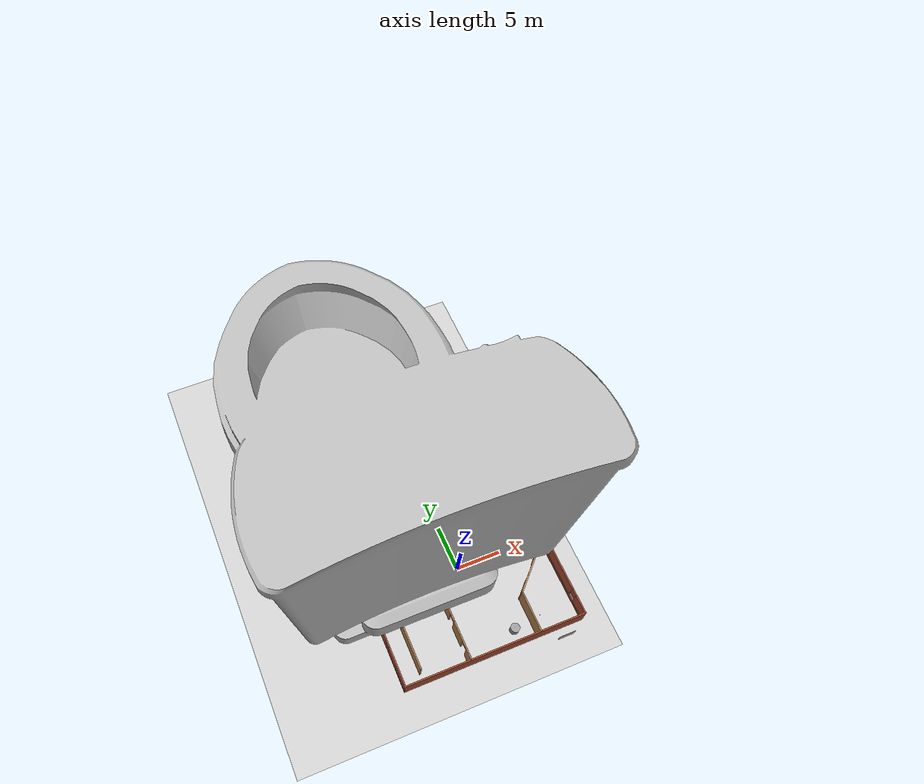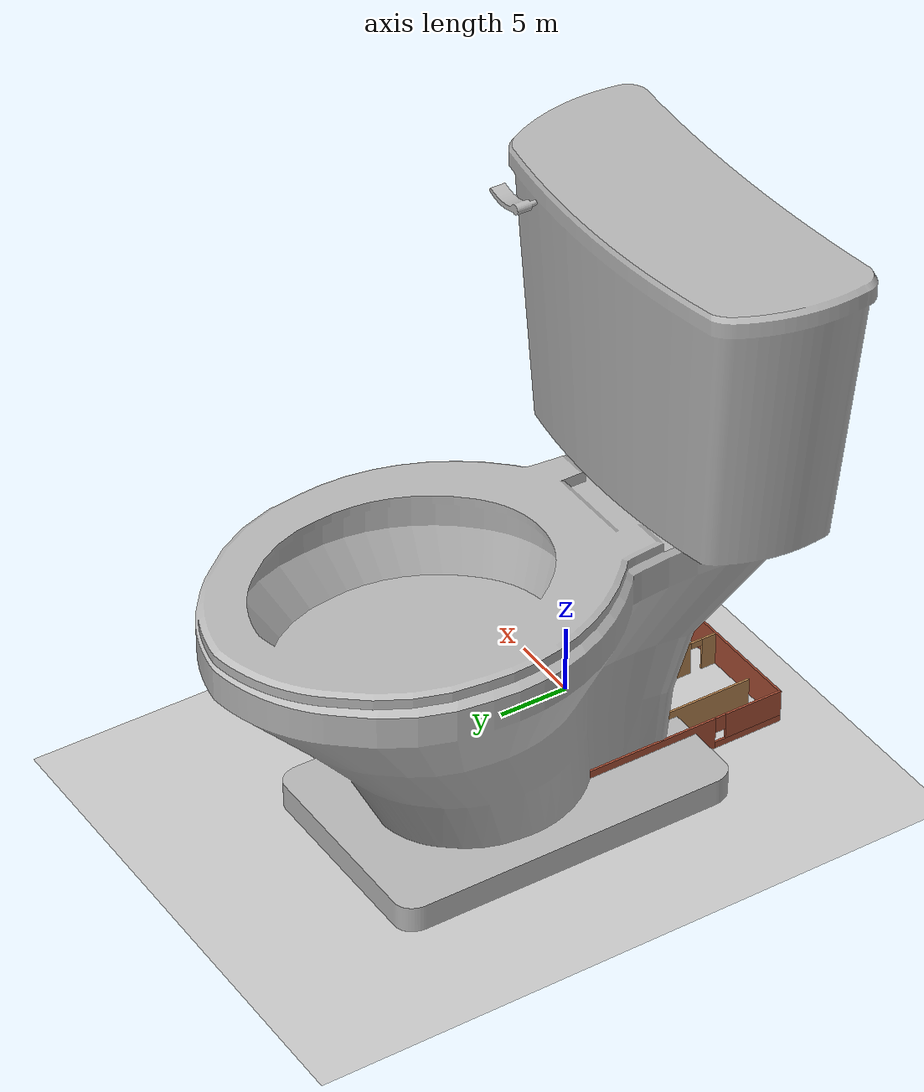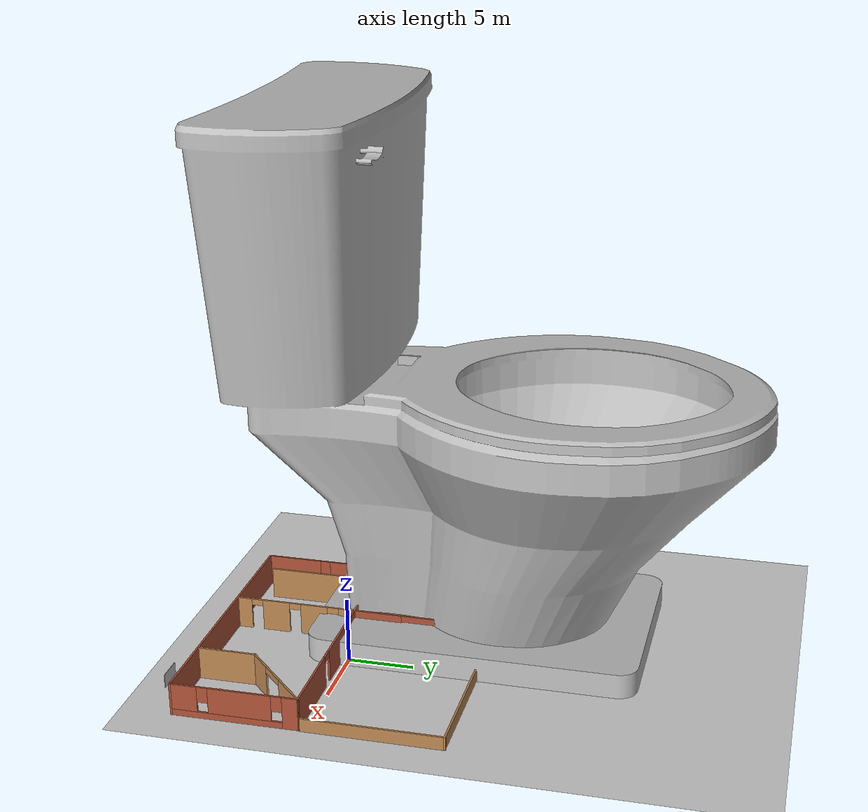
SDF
<sdf version="1.10">
 <world name="default">
  <gravity>0 0 -9.8000000000000007</gravity>
  <magnetic_field>6.0000000000000002e-06 2.3e-05 -4.1999999999999998e-05</magnetic_field>
  <atmosphere type="adiabatic"/>
  <physics type="ode">
   <max_step_size>0.001</max_step_size>
   <real_time_factor>1</real_time_factor>
   <real_time_update_rate>1000</real_time_update_rate>
  </physics>
  <scene>
   <ambient>0.400000006 0.400000006 0.400000006 1</ambient>
   <background>0.699999988 0.699999988 0.699999988 1</background>
   <shadows>true</shadows>
  </scene>
  <audio><device>default</device></audio>
  <spherical_coordinates>
   <surface_model>EARTH_WGS84</surface_model>
   <latitude_deg>0</latitude_deg>
   <longitude_deg>0</longitude_deg>
   <elevation>0</elevation>
   <heading_deg>0</heading_deg>
  </spherical_coordinates>
  <model name="ground_plane">
   <static>true</static>
   <link name="link">
    <collision name="collision">
     <geometry><plane><normal>0 0 1</normal><size>100 100</size></plane></geometry>
     <surface><friction><ode><mu>100</mu><mu2>50</mu2></ode></friction></surface>
    </collision>
    <visual name="visual">
     <cast_shadows>false</cast_shadows>
     <geometry><plane><normal>0 0 1</normal><size>100 100</size></plane></geometry>
     <material>
      <script><uri>file://media/materials/scripts/gazebo.material</uri><name>Gazebo/Grey</name></script>
     </material>
    </visual>
    <inertial>
     <mass>1</mass>
     <inertia><ixx>1</ixx><ixy>0</ixy><ixz>0</ixz><iyy>1</iyy><iyz>0</iyz><izz>1</izz></inertia>
    </inertial>
   </link>
  </model>
  <model name="test_room">
   <pose>-0.185701 0.023460000000000002 0 0 0 0</pose>
   <link name="Wall_1">
    <pose>-10.0852 -6.9999999999999999e-06 0 0 0 -1.5708</pose>
    <visual name="Wall_1_Visual_0">
     <pose>-2.6008399999999998 0 1.25 0 0 0</pose>
     <geometry><box><size>14.826599999999999 0.14999999999999999 2.5</size></box></geometry>
     <material>
      <script><uri>file://media/materials/scripts/gazebo.material</uri><name>Gazebo/Bricks</name></script>
      <ambient>1 1 1 1</ambient>
     </material>
     <meta><layer>0</layer></meta>
    </visual>
    <collision name="Wall_1_Collision_0">
     <geometry><box><size>14.826599999999999 0.14999999999999999 2.5</size></box></geometry>
     <pose>-2.6008399999999998 0 1.25 0 0 0</pose>
    </collision>
    <visual name="Wall_1_Visual_1">
     <pose>7.4133100000000001 0 0.25 0 0 0</pose>
     <geometry><box><size>5.20167 0.14999999999999999 0.5</size></box></geometry>
     <material>
      <script><uri>file://media/materials/scripts/gazebo.material</uri><name>Gazebo/Bricks</name></script>
      <ambient>1 1 1 1</ambient>
     </material>
     <meta><layer>0</layer></meta>
    </visual>
    <collision name="Wall_1_Collision_1">
     <geometry><box><size>5.20167 0.14999999999999999 0.5</size></box></geometry>
     <pose>7.4133100000000001 0 0.25 0 0 0</pose>
    </collision>
    <visual name="Wall_1_Visual_2">
     <pose>7.8133100000000004 0 1.5 0 0 0</pose>
     <geometry><box><size>4.4016700000000002 0.14999999999999999 2</size></box></geometry>
     <material>
      <script><uri>file://media/materials/scripts/gazebo.material</uri><name>Gazebo/Bricks</name></script>
      <ambient>1 1 1 1</ambient>
     </material>
     <meta><layer>0</layer></meta>
    </visual>
    <collision name="Wall_1_Collision_2">
     <geometry><box><size>4.4016700000000002 0.14999999999999999 2</size></box></geometry>
     <pose>7.8133100000000004 0 1.5 0 0 0</pose>
    </collision>
    <visual name="Wall_1_Visual_3">
     <pose>5.2124800000000002 0 1.8999999999999999 0 0 0</pose>
     <geometry><box><size>0.80000000000000004 0.14999999999999999 1.2</size></box></geometry>
     <material>
      <script><uri>file://media/materials/scripts/gazebo.material</uri><name>Gazebo/Bricks</name></script>
      <ambient>1 1 1 1</ambient>
     </material>
     <meta><layer>0</layer></meta>
    </visual>
    <collision name="Wall_1_Collision_3">
     <geometry><box><size>0.80000000000000004 0.14999999999999999 1.2</size></box></geometry>
     <pose>5.2124800000000002 0 1.8999999999999999 0 0 0</pose>
    </collision>
    <inertial>
     <mass>1</mass>
     <inertia><ixx>1</ixx><ixy>0</ixy><ixz>0</ixz><iyy>1</iyy><iyz>0</iyz><izz>1</izz></inertia>
    </inertial>
   </link>
   <link name="Wall_10">
    <pose>10.052600000000004 -5.2189899999999838 0 0 0 -1.5643299999999996</pose>
    <visual name="Wall_10_Visual_0">
     <pose>-4.1680999999999999 0 1.25 0 0 0</pose>
     <geometry><box><size>1.2333700000000001 0.14999999999999999 2.5</size></box></geometry>
     <material>
      <script><uri>file://media/materials/scripts/gazebo.material</uri><name>Gazebo/Bricks</name></script>
      <ambient>1 1 1 1</ambient>
     </material>
     <meta><layer>0</layer></meta>
    </visual>
    <collision name="Wall_10_Collision_0">
     <geometry><box><size>1.2333700000000001 0.14999999999999999 2.5</size></box></geometry>
     <pose>-4.1680999999999999 0 1.25 0 0 0</pose>
    </collision>
    <visual name="Wall_10_Visual_1">
     <pose>0.61668599999999996 0 0.25 0 0 0</pose>
     <geometry><box><size>8.3361999999999998 0.14999999999999999 0.5</size></box></geometry>
     <material>
      <script><uri>file://media/materials/scripts/gazebo.material</uri><name>Gazebo/Bricks</name></script>
      <ambient>1 1 1 1</ambient>
     </material>
     <meta><layer>0</layer></meta>
    </visual>
    <collision name="Wall_10_Collision_1">
     <geometry><box><size>8.3361999999999998 0.14999999999999999 0.5</size></box></geometry>
     <pose>0.61668599999999996 0 0.25 0 0 0</pose>
    </collision>
    <visual name="Wall_10_Visual_2">
     <pose>-0.41019699999999998 0 1.5 0 0 0</pose>
     <geometry><box><size>4.6824399999999997 0.14999999999999999 2</size></box></geometry>
     <material>
      <script><uri>file://media/materials/scripts/gazebo.material</uri><name>Gazebo/Bricks</name></script>
      <ambient>1 1 1 1</ambient>
     </material>
     <meta><layer>0</layer></meta>
    </visual>
    <collision name="Wall_10_Collision_2">
     <geometry><box><size>4.6824399999999997 0.14999999999999999 2</size></box></geometry>
     <pose>-0.41019699999999998 0 1.5 0 0 0</pose>
    </collision>
    <visual name="Wall_10_Visual_3">
     <pose>3.7579099999999999 0 1.5 0 0 0</pose>
     <geometry><box><size>2.05376 0.14999999999999999 2</size></box></geometry>
     <material>
      <script><uri>file://media/materials/scripts/gazebo.material</uri><name>Gazebo/Bricks</name></script>
      <ambient>1 1 1 1</ambient>
     </material>
     <meta><layer>0</layer></meta>
    </visual>
    <collision name="Wall_10_Collision_3">
     <geometry><box><size>2.05376 0.14999999999999999 2</size></box></geometry>
     <pose>3.7579099999999999 0 1.5 0 0 0</pose>
    </collision>
    <visual name="Wall_10_Visual_4">
     <pose>-3.1514199999999999 0 1.8999999999999999 0 0 0</pose>
     <geometry><box><size>0.80000000000000004 0.14999999999999999 1.2</size></box></geometry>
     <material>
      <script><uri>file://media/materials/scripts/gazebo.material</uri><name>Gazebo/Bricks</name></script>
      <ambient>1 1 1 1</ambient>
     </material>
     <meta><layer>0</layer></meta>
    </visual>
    <collision name="Wall_10_Collision_4">
     <geometry><box><size>0.80000000000000004 0.14999999999999999 1.2</size></box></geometry>
     <pose>-3.1514199999999999 0 1.8999999999999999 0 0 0</pose>
    </collision>
    <visual name="Wall_10_Visual_5">
     <pose>2.3310200000000001 0 1.8999999999999999 0 0 0</pose>
     <geometry><box><size>0.80000000000000004 0.14999999999999999 1.2</size></box></geometry>
     <material>
      <script><uri>file://media/materials/scripts/gazebo.material</uri><name>Gazebo/Bricks</name></script>
      <ambient>1 1 1 1</ambient>
     </material>
     <meta><layer>0</layer></meta>
    </visual>
    <collision name="Wall_10_Collision_5">
     <geometry><box><size>0.80000000000000004 0.14999999999999999 1.2</size></box></geometry>
     <pose>2.3310200000000001 0 1.8999999999999999 0 0 0</pose>
    </collision>
    <inertial>
     <mass>1</mass>
     <inertia><ixx>1</ixx><ixy>0</ixy><ixz>0</ixz><iyy>1</iyy><iyz>0</iyz><izz>1</izz></inertia>
    </inertial>
   </link>
   <link name="Wall_12">
    <collision name="Wall_12_Collision">
     <geometry><box><size>7.4126399999999997 0.14999999999999999 2.5</size></box></geometry>
     <pose>0 0 1.25 0 0 0</pose>
    </collision>
    <visual name="Wall_12_Visual">
     <pose>0 0 1.25 0 0 0</pose>
     <geometry><box><size>7.4126399999999997 0.14999999999999999 2.5</size></box></geometry>
     <material>
      <script><uri>file://media/materials/scripts/gazebo.material</uri><name>Gazebo/Bricks</name></script>
      <ambient>1 1 1 1</ambient>
     </material>
     <meta><layer>0</layer></meta>
    </visual>
    <pose>-6.4538500000000036 9.9384100000000011 0 0 0 -0.00020300000139346062</pose>
    <inertial>
     <mass>1</mass>
     <inertia><ixx>1</ixx><ixy>0</ixy><ixz>0</ixz><iyy>1</iyy><iyz>0</iyz><izz>1</izz></inertia>
    </inertial>
   </link>
   <link name="Wall_16">
    <pose>-6.4131499999999946 -0.50716799999999673 0 0 0 3.1415900000000008</pose>
    <visual name="Wall_16_Visual_0">
     <pose>-1.94676 0 1.25 0 0 0</pose>
     <geometry><box><size>3.3564799999999999 0.14999999999999999 2.5</size></box></geometry>
     <material>
      <script><uri>file://media/materials/scripts/gazebo.material</uri><name>Gazebo/Wood</name></script>
      <ambient>1 1 1 1</ambient>
     </material>
     <meta><layer>0</layer></meta>
    </visual>
    <collision name="Wall_16_Collision_0">
     <geometry><box><size>3.3564799999999999 0.14999999999999999 2.5</size></box></geometry>
     <pose>-1.94676 0 1.25 0 0 0</pose>
    </collision>
    <visual name="Wall_16_Visual_1">
     <pose>2.1282399999999999 0 1.25 0 0 0</pose>
     <geometry><box><size>2.9935200000000002 0.14999999999999999 2.5</size></box></geometry>
     <material>
      <script><uri>file://media/materials/scripts/gazebo.material</uri><name>Gazebo/Wood</name></script>
      <ambient>1 1 1 1</ambient>
     </material>
     <meta><layer>0</layer></meta>
    </visual>
    <collision name="Wall_16_Collision_1">
     <geometry><box><size>2.9935200000000002 0.14999999999999999 2.5</size></box></geometry>
     <pose>2.1282399999999999 0 1.25 0 0 0</pose>
    </collision>
    <visual name="Wall_16_Visual_2">
     <pose>0.181481 0 2.25 0 0 0</pose>
     <geometry><box><size>0.90000000000000002 0.14999999999999999 0.5</size></box></geometry>
     <material>
      <script><uri>file://media/materials/scripts/gazebo.material</uri><name>Gazebo/Wood</name></script>
      <ambient>1 1 1 1</ambient>
     </material>
     <meta><layer>0</layer></meta>
    </visual>
    <collision name="Wall_16_Collision_2">
     <geometry><box><size>0.90000000000000002 0.14999999999999999 0.5</size></box></geometry>
     <pose>0.181481 0 2.25 0 0 0</pose>
    </collision>
    <inertial>
     <mass>1</mass>
     <inertia><ixx>1</ixx><ixy>0</ixy><ixz>0</ixz><iyy>1</iyy><iyz>0</iyz><izz>1</izz></inertia>
    </inertial>
   </link>
   <link name="Wall_18">
    <pose>-2.8631499999999916 -5.1821699999999931 0 0 0 -1.5707999999999998</pose>
    <visual name="Wall_18_Visual_0">
     <pose>-4.08833 0 1.25 0 0 0</pose>
     <geometry><box><size>1.32334 0.14999999999999999 2.5</size></box></geometry>
     <material>
      <script><uri>file://media/materials/scripts/gazebo.material</uri><name>Gazebo/Wood</name></script>
      <ambient>1 1 1 1</ambient>
     </material>
     <meta><layer>0</layer></meta>
    </visual>
    <collision name="Wall_18_Collision_0">
     <geometry><box><size>1.32334 0.14999999999999999 2.5</size></box></geometry>
     <pose>-4.08833 0 1.25 0 0 0</pose>
    </collision>
    <visual name="Wall_18_Visual_1">
     <pose>-1.45004 0 1.25 0 0 0</pose>
     <geometry><box><size>2.1532399999999998 0.14999999999999999 2.5</size></box></geometry>
     <material>
      <script><uri>file://media/materials/scripts/gazebo.material</uri><name>Gazebo/Wood</name></script>
      <ambient>1 1 1 1</ambient>
     </material>
     <meta><layer>0</layer></meta>
    </visual>
    <collision name="Wall_18_Collision_1">
     <geometry><box><size>2.1532399999999998 0.14999999999999999 2.5</size></box></geometry>
     <pose>-1.45004 0 1.25 0 0 0</pose>
    </collision>
    <visual name="Wall_18_Visual_2">
     <pose>1.60632 0 1.25 0 0 0</pose>
     <geometry><box><size>2.1594799999999998 0.14999999999999999 2.5</size></box></geometry>
     <material>
      <script><uri>file://media/materials/scripts/gazebo.material</uri><name>Gazebo/Wood</name></script>
      <ambient>1 1 1 1</ambient>
     </material>
     <meta><layer>0</layer></meta>
    </visual>
    <collision name="Wall_18_Collision_2">
     <geometry><box><size>2.1594799999999998 0.14999999999999999 2.5</size></box></geometry>
     <pose>1.60632 0 1.25 0 0 0</pose>
    </collision>
    <visual name="Wall_18_Visual_3">
     <pose>4.1680299999999999 0 1.25 0 0 0</pose>
     <geometry><box><size>1.16395 0.14999999999999999 2.5</size></box></geometry>
     <material>
      <script><uri>file://media/materials/scripts/gazebo.material</uri><name>Gazebo/Wood</name></script>
      <ambient>1 1 1 1</ambient>
     </material>
     <meta><layer>0</layer></meta>
    </visual>
    <collision name="Wall_18_Collision_3">
     <geometry><box><size>1.16395 0.14999999999999999 2.5</size></box></geometry>
     <pose>4.1680299999999999 0 1.25 0 0 0</pose>
    </collision>
    <visual name="Wall_18_Visual_4">
     <pose>-2.9766599999999999 0 2.25 0 0 0</pose>
     <geometry><box><size>0.90000000000000002 0.14999999999999999 0.5</size></box></geometry>
     <material>
      <script><uri>file://media/materials/scripts/gazebo.material</uri><name>Gazebo/Wood</name></script>
      <ambient>1 1 1 1</ambient>
     </material>
     <meta><layer>0</layer></meta>
    </visual>
    <collision name="Wall_18_Collision_4">
     <geometry><box><size>0.90000000000000002 0.14999999999999999 0.5</size></box></geometry>
     <pose>-2.9766599999999999 0 2.25 0 0 0</pose>
    </collision>
    <visual name="Wall_18_Visual_5">
     <pose>0.076577000000000006 0 2.25 0 0 0</pose>
     <geometry><box><size>0.90000000000000002 0.14999999999999999 0.5</size></box></geometry>
     <material>
      <script><uri>file://media/materials/scripts/gazebo.material</uri><name>Gazebo/Wood</name></script>
      <ambient>1 1 1 1</ambient>
     </material>
     <meta><layer>0</layer></meta>
    </visual>
    <collision name="Wall_18_Collision_5">
     <geometry><box><size>0.90000000000000002 0.14999999999999999 0.5</size></box></geometry>
     <pose>0.076577000000000006 0 2.25 0 0 0</pose>
    </collision>
    <visual name="Wall_18_Visual_6">
     <pose>3.13605 0 2.25 0 0 0</pose>
     <geometry><box><size>0.90000000000000002 0.14999999999999999 0.5</size></box></geometry>
     <material>
      <script><uri>file://media/materials/scripts/gazebo.material</uri><name>Gazebo/Wood</name></script>
      <ambient>1 1 1 1</ambient>
     </material>
     <meta><layer>0</layer></meta>
    </visual>
    <collision name="Wall_18_Collision_6">
     <geometry><box><size>0.90000000000000002 0.14999999999999999 0.5</size></box></geometry>
     <pose>3.13605 0 2.25 0 0 0</pose>
    </collision>
    <inertial>
     <mass>1</mass>
     <inertia><ixx>1</ixx><ixy>0</ixy><ixz>0</ixz><iyy>1</iyy><iyz>0</iyz><izz>1</izz></inertia>
    </inertial>
   </link>
   <link name="Wall_20">
    <collision name="Wall_20_Collision">
     <geometry><box><size>7 0.14999999999999999 2.5</size></box></geometry>
     <pose>0 0 1.25 0 0 0</pose>
    </collision>
    <visual name="Wall_20_Visual">
     <pose>0 0 1.25 0 0 0</pose>
     <geometry><box><size>7 0.14999999999999999 2.5</size></box></geometry>
     <material>
      <script><uri>file://media/materials/scripts/gazebo.material</uri><name>Gazebo/Wood</name></script>
      <ambient>1 1 1 1</ambient>
     </material>
     <meta><layer>0</layer></meta>
    </visual>
    <pose>-7.9691699999999939 -5.4442299999999983 0 0 0 -1.5707999999999998</pose>
    <inertial>
     <mass>1</mass>
     <inertia><ixx>1</ixx><ixy>0</ixy><ixz>0</ixz><iyy>1</iyy><iyz>0</iyz><izz>1</izz></inertia>
    </inertial>
   </link>
   <link name="Wall_22">
    <pose>7.511880000000005 -3.0195299999999863 0 0 0 -2.3561899999999989</pose>
    <visual name="Wall_22_Visual_0">
     <pose>-2.0926499999999999 0 1.25 0 0 0</pose>
     <geometry><box><size>3.0647099999999998 0.14999999999999999 2.5</size></box></geometry>
     <material>
      <script><uri>file://media/materials/scripts/gazebo.material</uri><name>Gazebo/Wood</name></script>
      <ambient>1 1 1 1</ambient>
     </material>
     <meta><layer>0</layer></meta>
    </visual>
    <collision name="Wall_22_Collision_0">
     <geometry><box><size>3.0647099999999998 0.14999999999999999 2.5</size></box></geometry>
     <pose>-2.0926499999999999 0 1.25 0 0 0</pose>
    </collision>
    <visual name="Wall_22_Visual_1">
     <pose>2.58752 0 1.25 0 0 0</pose>
     <geometry><box><size>2.0749599999999999 0.14999999999999999 2.5</size></box></geometry>
     <material>
      <script><uri>file://media/materials/scripts/gazebo.material</uri><name>Gazebo/Wood</name></script>
      <ambient>1 1 1 1</ambient>
     </material>
     <meta><layer>0</layer></meta>
    </visual>
    <collision name="Wall_22_Collision_1">
     <geometry><box><size>2.0749599999999999 0.14999999999999999 2.5</size></box></geometry>
     <pose>2.58752 0 1.25 0 0 0</pose>
    </collision>
    <visual name="Wall_22_Visual_2">
     <pose>0.49487399999999998 0 2.25 0 0 0</pose>
     <geometry><box><size>2.1103299999999998 0.14999999999999999 0.5</size></box></geometry>
     <material>
      <script><uri>file://media/materials/scripts/gazebo.material</uri><name>Gazebo/Wood</name></script>
      <ambient>1 1 1 1</ambient>
     </material>
     <meta><layer>0</layer></meta>
    </visual>
    <collision name="Wall_22_Collision_2">
     <geometry><box><size>2.1103299999999998 0.14999999999999999 0.5</size></box></geometry>
     <pose>0.49487399999999998 0 2.25 0 0 0</pose>
    </collision>
    <inertial>
     <mass>1</mass>
     <inertia><ixx>1</ixx><ixy>0</ixy><ixz>0</ixz><iyy>1</iyy><iyz>0</iyz><izz>1</izz></inertia>
    </inertial>
   </link>
   <link name="Wall_23">
    <collision name="Wall_23_Collision">
     <geometry><box><size>4.5 0.14999999999999999 2.5</size></box></geometry>
     <pose>0 0 1.25 0 0 0</pose>
    </collision>
    <visual name="Wall_23_Visual">
     <pose>0 0 1.25 0 0 0</pose>
     <geometry><box><size>4.5 0.14999999999999999 2.5</size></box></geometry>
     <material>
      <script><uri>file://media/materials/scripts/gazebo.material</uri><name>Gazebo/Wood</name></script>
      <ambient>1 1 1 1</ambient>
     </material>
     <meta><layer>0</layer></meta>
    </visual>
    <pose>5.0016500000000086 -7.7047599999999878 0 0 0 -1.5707999999999998</pose>
    <inertial>
     <mass>1</mass>
     <inertia><ixx>1</ixx><ixy>0</ixy><ixz>0</ixz><iyy>1</iyy><iyz>0</iyz><izz>1</izz></inertia>
    </inertial>
   </link>
   <link name="Wall_3">
    <collision name="Wall_3_Collision">
     <geometry><box><size>20.320399999999999 0.14999999999999999 2.5</size></box></geometry>
     <pose>0 0 1.25 0 0 0</pose>
    </collision>
    <visual name="Wall_3_Visual">
     <pose>0 0 1.25 0 0 0</pose>
     <geometry><box><size>20.320399999999999 0.14999999999999999 2.5</size></box></geometry>
     <material>
      <script><uri>file://media/materials/scripts/gazebo.material</uri><name>Gazebo/Bricks</name></script>
      <ambient>1 1 1 1</ambient>
     </material>
     <meta><layer>0</layer></meta>
    </visual>
    <pose>8.0000000112767644e-06 -9.9391599999999904 0 0 0 7.7715611723760958e-16</pose>
    <inertial>
     <mass>1</mass>
     <inertia><ixx>1</ixx><ixy>0</ixy><ixz>0</ixz><iyy>1</iyy><iyz>0</iyz><izz>1</izz></inertia>
    </inertial>
   </link>
   <link name="Wall_7">
    <pose>-2.8423099999999994 4.7152500000000046 0 0 0 -1.5745799999999992</pose>
    <visual name="Wall_7_Visual_0">
     <pose>-3.9284500000000002 0 1.25 0 0 0</pose>
     <geometry><box><size>2.7380599999999999 0.14999999999999999 2.5</size></box></geometry>
     <material>
      <script><uri>file://media/materials/scripts/gazebo.material</uri><name>Gazebo/Bricks</name></script>
      <ambient>1 1 1 1</ambient>
     </material>
     <meta><layer>0</layer></meta>
    </visual>
    <collision name="Wall_7_Collision_0">
     <geometry><box><size>2.7380599999999999 0.14999999999999999 2.5</size></box></geometry>
     <pose>-3.9284500000000002 0 1.25 0 0 0</pose>
    </collision>
    <visual name="Wall_7_Visual_1">
     <pose>3.3884400000000001 0 1.25 0 0 0</pose>
     <geometry><box><size>3.8180700000000001 0.14999999999999999 2.5</size></box></geometry>
     <material>
      <script><uri>file://media/materials/scripts/gazebo.material</uri><name>Gazebo/Bricks</name></script>
      <ambient>1 1 1 1</ambient>
     </material>
     <meta><layer>0</layer></meta>
    </visual>
    <collision name="Wall_7_Collision_1">
     <geometry><box><size>3.8180700000000001 0.14999999999999999 2.5</size></box></geometry>
     <pose>3.3884400000000001 0 1.25 0 0 0</pose>
    </collision>
    <visual name="Wall_7_Visual_2">
     <pose>-0.54000400000000004 0 2.25 0 0 0</pose>
     <geometry><box><size>4.0388200000000003 0.14999999999999999 0.5</size></box></geometry>
     <material>
      <script><uri>file://media/materials/scripts/gazebo.material</uri><name>Gazebo/Bricks</name></script>
      <ambient>1 1 1 1</ambient>
     </material>
     <meta><layer>0</layer></meta>
    </visual>
    <collision name="Wall_7_Collision_2">
     <geometry><box><size>4.0388200000000003 0.14999999999999999 0.5</size></box></geometry>
     <pose>-0.54000400000000004 0 2.25 0 0 0</pose>
    </collision>
    <inertial>
     <mass>1</mass>
     <inertia><ixx>1</ixx><ixy>0</ixy><ixz>0</ixz><iyy>1</iyy><iyz>0</iyz><izz>1</izz></inertia>
    </inertial>
   </link>
   <link name="Wall_8">
    <pose>3.5800100000000041 -0.50823699999998939 0 0 0 -0.00016600000076160548</pose>
    <visual name="Wall_8_Visual_0">
     <pose>-3.36964 0 1.25 0 0 0</pose>
     <geometry><box><size>6.2949200000000003 0.14999999999999999 2.5</size></box></geometry>
     <material>
      <script><uri>file://media/materials/scripts/gazebo.material</uri><name>Gazebo/Bricks</name></script>
      <ambient>1 1 1 1</ambient>
     </material>
     <meta><layer>0</layer></meta>
    </visual>
    <collision name="Wall_8_Collision_0">
     <geometry><box><size>6.2949200000000003 0.14999999999999999 2.5</size></box></geometry>
     <pose>-3.36964 0 1.25 0 0 0</pose>
    </collision>
    <visual name="Wall_8_Visual_1">
     <pose>3.5974599999999999 0 1.25 0 0 0</pose>
     <geometry><box><size>5.83927 0.14999999999999999 2.5</size></box></geometry>
     <material>
      <script><uri>file://media/materials/scripts/gazebo.material</uri><name>Gazebo/Bricks</name></script>
      <ambient>1 1 1 1</ambient>
     </material>
     <meta><layer>0</layer></meta>
    </visual>
    <collision name="Wall_8_Collision_1">
     <geometry><box><size>5.83927 0.14999999999999999 2.5</size></box></geometry>
     <pose>3.5974599999999999 0 1.25 0 0 0</pose>
    </collision>
    <visual name="Wall_8_Visual_2">
     <pose>0.227824 0 2.25 0 0 0</pose>
     <geometry><box><size>0.90000000000000002 0.14999999999999999 0.5</size></box></geometry>
     <material>
      <script><uri>file://media/materials/scripts/gazebo.material</uri><name>Gazebo/Bricks</name></script>
      <ambient>1 1 1 1</ambient>
     </material>
     <meta><layer>0</layer></meta>
    </visual>
    <collision name="Wall_8_Collision_2">
     <geometry><box><size>0.90000000000000002 0.14999999999999999 0.5</size></box></geometry>
     <pose>0.227824 0 2.25 0 0 0</pose>
    </collision>
    <inertial>
     <mass>1</mass>
     <inertia><ixx>1</ixx><ixy>0</ixy><ixz>0</ixz><iyy>1</iyy><iyz>0</iyz><izz>1</izz></inertia>
    </inertial>
   </link>
   <static>true</static>
  </model>
  <model name="wooden_fence">
   <link name="Wall_14">
    <pose>6.4249999999999998 0 -0.77559599999999995 0 0 1.5708</pose>
    <inertial>
     <inertia><ixx>0.01</ixx><ixy>0</ixy><ixz>0</ixz><iyy>0.01</iyy><iyz>0</iyz><izz>0.01</izz></inertia>
     <mass>1</mass>
    </inertial>
    <visual name="Wall_14_Visual">
     <pose>0 0 1.25 0 0 0</pose>
     <geometry><box><size>10.5 0.14999999999999999 1.0201</size></box></geometry>
     <material>
      <script><uri>file://media/materials/scripts/gazebo.material</uri><name>Gazebo/Wood</name></script>
      <ambient>1 1 1 1</ambient>
      <shader type="pixel"/>
     </material>
     <meta><layer>0</layer></meta>
    </visual>
    <collision name="Wall_14_Collision">
     <pose>0 0 1.25 0 0 0</pose>
     <geometry><box><size>10.5 0.14999999999999999 1.0201</size></box></geometry>
     <surface>
      <friction>
       <ode><mu>1</mu><mu2>1</mu2><fdir1>0 0 0</fdir1><slip1>0</slip1><slip2>0</slip2></ode>
       <torsional>
        <coefficient>1</coefficient>
        <patch_radius>0</patch_radius>
        <surface_radius>0</surface_radius>
        <use_patch_radius>true</use_patch_radius>
        <ode><slip>0</slip></ode>
       </torsional>
      </friction>
      <bounce><restitution_coefficient>0</restitution_coefficient><threshold>1000000</threshold></bounce>
      <contact>
       <collide_without_contact>false</collide_without_contact>
       <collide_without_contact_bitmask>1</collide_without_contact_bitmask>
       <collide_bitmask>1</collide_bitmask>
       <ode>
        <soft_cfm>0</soft_cfm>
        <soft_erp>0.20000000000000001</soft_erp>
        <kp>10000000000000</kp>
        <kd>1</kd>
        <max_vel>0.01</max_vel>
        <min_depth>0</min_depth>
       </ode>
       <bullet>
        <split_impulse>true</split_impulse>
        <split_impulse_penetration_threshold>-0.01</split_impulse_penetration_threshold>
        <soft_cfm>0</soft_cfm>
        <soft_erp>0.20000000000000001</soft_erp>
        <kp>10000000000000</kp>
        <kd>1</kd>
       </bullet>
      </contact>
     </surface>
    </collision>
   </link>
   <link name="Wall_16">
    <pose>5.3290705182007514e-15 5.1750000000000043 -0.7441580000000001 0 0 3.141589999999999</pose>
    <inertial>
     <inertia><ixx>0.01</ixx><ixy>0</ixy><ixz>0</ixz><iyy>0.01</iyy><iyz>0</iyz><izz>0.01</izz></inertia>
     <mass>1</mass>
    </inertial>
    <visual name="Wall_16_Visual">
     <pose>0 0 1.25 0 0 0</pose>
     <geometry><box><size>13 0.14999999999999999 0.97096400000000005</size></box></geometry>
     <material>
      <script><uri>file://media/materials/scripts/gazebo.material</uri><name>Gazebo/Wood</name></script>
      <ambient>1 1 1 1</ambient>
      <shader type="pixel"/>
     </material>
     <meta><layer>0</layer></meta>
    </visual>
    <collision name="Wall_16_Collision">
     <pose>0 0 1.25 0 0 0</pose>
     <geometry><box><size>13 0.14999999999999999 0.97096400000000005</size></box></geometry>
     <surface>
      <friction>
       <ode><mu>1</mu><mu2>1</mu2><fdir1>0 0 0</fdir1><slip1>0</slip1><slip2>0</slip2></ode>
       <torsional>
        <coefficient>1</coefficient>
        <patch_radius>0</patch_radius>
        <surface_radius>0</surface_radius>
        <use_patch_radius>true</use_patch_radius>
        <ode><slip>0</slip></ode>
       </torsional>
      </friction>
      <bounce><restitution_coefficient>0</restitution_coefficient><threshold>1000000</threshold></bounce>
      <contact>
       <collide_without_contact>false</collide_without_contact>
       <collide_without_contact_bitmask>1</collide_without_contact_bitmask>
       <collide_bitmask>1</collide_bitmask>
       <ode>
        <soft_cfm>0</soft_cfm>
        <soft_erp>0.20000000000000001</soft_erp>
        <kp>10000000000000</kp>
        <kd>1</kd>
        <max_vel>0.01</max_vel>
        <min_depth>0</min_depth>
       </ode>
       <bullet>
        <split_impulse>true</split_impulse>
        <split_impulse_penetration_threshold>-0.01</split_impulse_penetration_threshold>
        <soft_cfm>0</soft_cfm>
        <soft_erp>0.20000000000000001</soft_erp>
        <kp>10000000000000</kp>
        <kd>1</kd>
       </bullet>
      </contact>
     </surface>
    </collision>
   </link>
   <static>true</static>
   <pose>3.4043999999999999 4.8091600000000003 0 0 0 0</pose>
  </model>
  <model name="unit_cylinder">
   <pose>2.8368799999999998 -8.3325999999999993 0.5 0 0 0</pose>
   <link name="link">
    <inertial>
     <mass>1</mass>
     <inertia>
      <ixx>0.14583299999999999</ixx>
      <ixy>0</ixy>
      <ixz>0</ixz>
      <iyy>0.14583299999999999</iyy>
      <iyz>0</iyz>
      <izz>0.125</izz>
     </inertia>
    </inertial>
    <collision name="collision">
     <geometry><cylinder><radius>0.5</radius><length>1</length></cylinder></geometry>
    </collision>
    <visual name="visual">
     <geometry><cylinder><radius>0.5</radius><length>1</length></cylinder></geometry>
     <material>
      <script><name>Gazebo/Grey</name><uri>file://media/materials/scripts/gazebo.material</uri></script>
     </material>
    </visual>
   </link>
   <static>false</static>
  </model>
  <model name="unit_sphere">
   <pose>-8.6767199999999995 7.58399 0.5 0 0 0</pose>
   <link name="link">
    <inertial>
     <mass>1</mass>
     <inertia>
      <ixx>0.10000000000000001</ixx>
      <ixy>0</ixy>
      <ixz>0</ixz>
      <iyy>0.10000000000000001</iyy>
      <iyz>0</iyz>
      <izz>0.10000000000000001</izz>
     </inertia>
    </inertial>
    <collision name="collision"><geometry><sphere><radius>0.5</radius></sphere></geometry></collision>
    <visual name="visual">
     <geometry><sphere><radius>0.5</radius></sphere></geometry>
     <material>
      <script><name>Gazebo/Grey</name><uri>file://media/materials/scripts/gazebo.material</uri></script>
     </material>
    </visual>
   </link>
   <static>false</static>
  </model>
  <model name="unit_sphere_0">
   <pose>-4.8006799999999998 7.6063400000000003 0.5 0 0 0</pose>
   <link name="link">
    <inertial>
     <mass>1</mass>
     <inertia>
      <ixx>0.10000000000000001</ixx>
      <ixy>0</ixy>
      <ixz>0</ixz>
      <iyy>0.10000000000000001</iyy>
      <iyz>0</iyz>
      <izz>0.10000000000000001</izz>
     </inertia>
    </inertial>
    <collision name="collision"><geometry><sphere><radius>0.5</radius></sphere></geometry></collision>
    <visual name="visual">
     <geometry><sphere><radius>0.5</radius></sphere></geometry>
     <material>
      <script><name>Gazebo/Grey</name><uri>file://media/materials/scripts/gazebo.material</uri></script>
     </material>
    </visual>
   </link>
   <static>false</static>
  </model>
  <model name="whiteboard">
   <static>true</static>
   <link name="link">
    <collision name="collision">
     <pose>-0.010992 -0.000776 0.99821199999999999 0 0 0</pose>
     <geometry><box><size>1.9737199999999999 0.69681999999999999 2.0250699999999999</size></box></geometry>
    </collision>
    <visual name="visual">
     <geometry>
      <mesh><uri>model://whiteboard/meshes/whiteboard.obj</uri><scale>0.01 0.01 0.01</scale></mesh>
     </geometry>
    </visual>
    <inertial>
     <mass>1</mass>
     <inertia><ixx>1</ixx><ixy>0</ixy><ixz>0</ixz><iyy>1</iyy><iyz>0</iyz><izz>1</izz></inertia>
    </inertial>
   </link>
   <pose>7.3027701377868652 -11.088600158691406 -0.0034432599786669016 1.5816663049527049 0 0</pose>
  </model>
  <model name="window_squeegee">
   <static>false</static>
   <link name="squeegee_body">
    <inertial>
     <mass>0.17999999999999999</mass>
     <pose>0 0 0.080000000000000002 0 0 0</pose>
     <inertia>
      <ixx>0.00089999999999999998</ixx>
      <ixy>0</ixy>
      <ixz>0</ixz>
      <iyy>0.0011999999999999999</iyy>
      <iyz>0</iyz>
      <izz>0.0015</izz>
     </inertia>
    </inertial>
    <visual name="handle_visual">
     <pose>0 0 0.10000000000000001 0 0 0</pose>
     <geometry>
      <cylinder><radius>0.014999999999999999</radius><length>0.17999999999999999</length></cylinder>
     </geometry>
     <material>
      <ambient>0.200000003 0.200000003 0.800000012 1</ambient>
      <diffuse>0.200000003 0.200000003 0.800000012 1</diffuse>
      <specular>0.300000012 0.300000012 0.300000012 1</specular>
     </material>
    </visual>
    <collision name="handle_collision">
     <pose>0 0 0.10000000000000001 0 0 0</pose>
     <geometry>
      <cylinder><radius>0.014999999999999999</radius><length>0.17999999999999999</length></cylinder>
     </geometry>
    </collision>
    <visual name="grip_visual">
     <pose>0 0 0.080000000000000002 0 0 0</pose>
     <geometry>
      <cylinder><radius>0.017000000000000001</radius><length>0.050000000000000003</length></cylinder>
     </geometry>
     <material>
      <ambient>0.100000001 0.100000001 0.100000001 1</ambient>
      <diffuse>0.100000001 0.100000001 0.100000001 1</diffuse>
      <specular>0.0500000007 0.0500000007 0.0500000007 1</specular>
     </material>
    </visual>
    <visual name="frame_visual">
     <pose>0 0 0.0050000000000000001 0 0 0</pose>
     <geometry><box><size>0.25 0.02 0.01</size></box></geometry>
     <material>
      <ambient>0.699999988 0.699999988 0.699999988 1</ambient>
      <diffuse>0.699999988 0.699999988 0.699999988 1</diffuse>
      <specular>0.5 0.5 0.5 1</specular>
     </material>
    </visual>
    <collision name="frame_collision">
     <pose>0 0 0.0050000000000000001 0 0 0</pose>
     <geometry><box><size>0.25 0.02 0.01</size></box></geometry>
    </collision>
    <visual name="rubber_blade_visual">
     <pose>0 0 -0.0030000000000000001 0 0 0</pose>
     <geometry><box><size>0.23999999999999999 0.0030000000000000001 0.0080000000000000002</size></box></geometry>
     <material>
      <ambient>0.100000001 0.100000001 0.100000001 1</ambient>
      <diffuse>0.200000003 0.200000003 0.200000003 1</diffuse>
      <specular>0.0500000007 0.0500000007 0.0500000007 1</specular>
     </material>
    </visual>
    <collision name="rubber_blade_collision">
     <pose>0 0 -0.0030000000000000001 0 0 0</pose>
     <geometry><box><size>0.23999999999999999 0.0030000000000000001 0.0080000000000000002</size></box></geometry>
     <surface>
      <friction><ode><mu>0.80000000000000004</mu><mu2>0.80000000000000004</mu2></ode></friction>
      <bounce><restitution_coefficient>0.10000000000000001</restitution_coefficient></bounce>
      <contact>
       <ode>
        <soft_cfm>0.050000000000000003</soft_cfm>
        <soft_erp>0.20000000000000001</soft_erp>
        <kp>5000</kp>
        <kd>50</kd>
       </ode>
      </contact>
     </surface>
    </collision>
    <visual name="corner_support_left">
     <pose>-0.11 0 0 0 0 0</pose>
     <geometry><box><size>0.014999999999999999 0.025000000000000001 0.014999999999999999</size></box></geometry>
     <material>
      <ambient>0.699999988 0.699999988 0.699999988 1</ambient>
      <diffuse>0.699999988 0.699999988 0.699999988 1</diffuse>
      <specular>0.5 0.5 0.5 1</specular>
     </material>
    </visual>
    <visual name="corner_support_right">
     <pose>0.11 0 0 0 0 0</pose>
     <geometry><box><size>0.014999999999999999 0.025000000000000001 0.014999999999999999</size></box></geometry>
     <material>
      <ambient>0.699999988 0.699999988 0.699999988 1</ambient>
      <diffuse>0.699999988 0.699999988 0.699999988 1</diffuse>
      <specular>0.5 0.5 0.5 1</specular>
     </material>
    </visual>
    <visual name="connection_joint">
     <pose>0 0 0.014999999999999999 0 0 0</pose>
     <geometry><box><size>0.040000000000000001 0.029999999999999999 0.02</size></box></geometry>
     <material>
      <ambient>0.600000024 0.600000024 0.600000024 1</ambient>
      <diffuse>0.600000024 0.600000024 0.600000024 1</diffuse>
      <specular>0.400000006 0.400000006 0.400000006 1</specular>
     </material>
    </visual>
    <collision name="connection_joint_collision">
     <pose>0 0 0.014999999999999999 0 0 0</pose>
     <geometry><box><size>0.040000000000000001 0.029999999999999999 0.02</size></box></geometry>
    </collision>
   </link>
   <pose>6.102881908416748 -7.8917098045349121 0.010497599840164185 0 0 0</pose>
  </model>
  <model name="toilet">
   <static>true</static>
   <link name="link">
    <collision name="collision">
     <pose>-0.0038730000000000001 0.13400100000000001 0.58209699999999998 0 0 0</pose>
     <geometry><box><size>0.55163099999999998 1.09406 1.18218</size></box></geometry>
    </collision>
    <visual name="visual">
     <geometry>
      <mesh>
       <uri>model://toilet/meshes/toilet.dae</uri>
       <scale>1.3999999999999999 1.3999999999999999 1.3999999999999999</scale>
      </mesh>
     </geometry>
    </visual>
    <inertial>
     <mass>1</mass>
     <inertia><ixx>1</ixx><ixy>0</ixy><ixz>0</ixz><iyy>1</iyy><iyz>0</iyz><izz>1</izz></inertia>
    </inertial>
   </link>
   <pose>5.6663236618041992 -8.4108991622924805 0 0 0 1.5694300101611129</pose>
  </model>
  <model name="whiteboard_0">
   <static>true</static>
   <link name="link">
    <collision name="collision">
     <pose>-0.010992 -0.000776 0.99821199999999999 0 0 0</pose>
     <geometry><box><size>1.9737199999999999 0.69681999999999999 2.0250699999999999</size></box></geometry>
    </collision>
    <visual name="visual">
     <geometry>
      <mesh><uri>model://whiteboard/meshes/whiteboard.obj</uri><scale>0.01 0.01 0.01</scale></mesh>
     </geometry>
    </visual>
    <inertial>
     <mass>1</mass>
     <inertia><ixx>1</ixx><ixy>0</ixy><ixz>0</ixz><iyy>1</iyy><iyz>0</iyz><izz>1</izz></inertia>
    </inertial>
   </link>
   <pose>9.895843505859375 -8.9399538040161133 -0.60817331075668335 1.5677099515421313 0.003781454480611087 1.5470100210843245</pose>
  </model>
  <light name="sun" type="directional">
   <pose>0 0 10 0 0 0</pose>
   <intensity>1</intensity>
   <direction>-0.5 0.10000000000000001 -0.90000000000000002</direction>
   <diffuse>0.800000012 0.800000012 0.800000012 1</diffuse>
   <specular>0.200000003 0.200000003 0.200000003 1</specular>
   <attenuation>
    <range>1000</range>
    <linear>0.01</linear>
    <constant>0.90000000000000002</constant>
    <quadratic>0.001</quadratic>
   </attenuation>
   <spot><inner_angle>0</inner_angle><outer_angle>0</outer_angle><falloff>0</falloff></spot>
  </light>
 </world>
</sdf>
